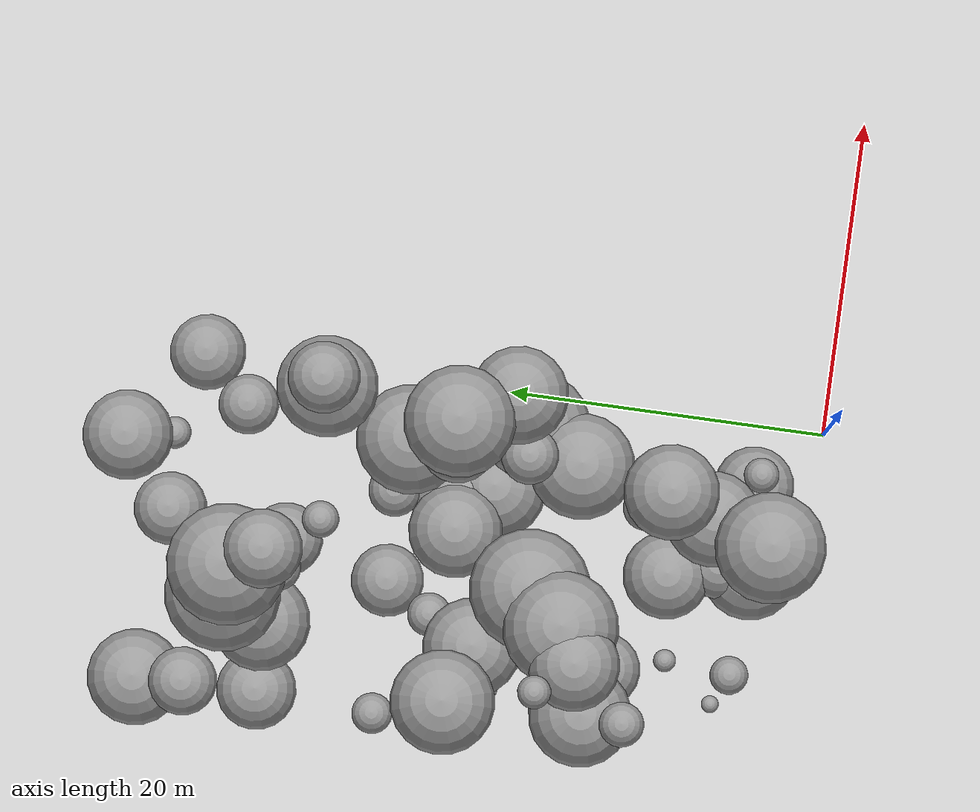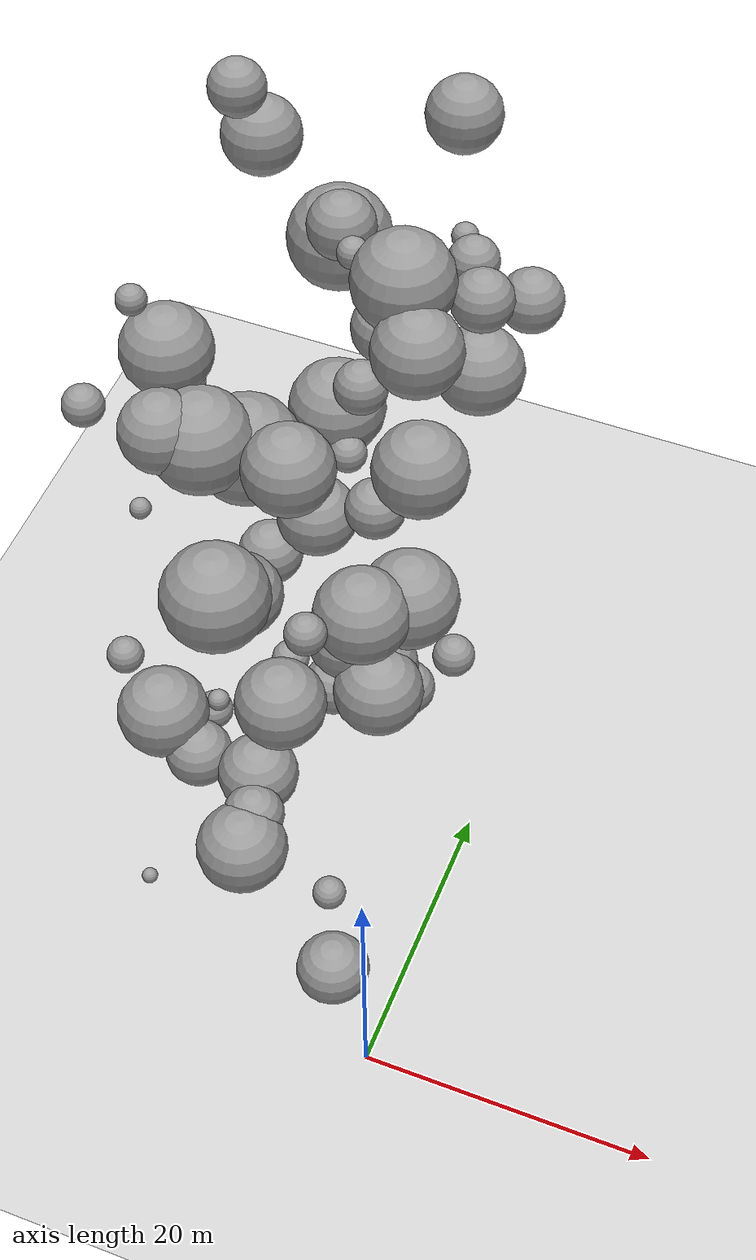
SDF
<sdf version="1.7">
 <world name="default">
  <model name="ground_plane">
   <static>1</static>
   <link name="link">
    <collision name="collision">
     <geometry><plane><normal>0 0 1</normal><size>100 100</size></plane></geometry>
     <surface>
      <contact><collide_bitmask>65535</collide_bitmask></contact>
      <friction><ode><mu>100</mu><mu2>50</mu2></ode></friction>
     </surface>
    </collision>
    <visual name="visual">
     <cast_shadows>0</cast_shadows>
     <geometry><plane><normal>0 0 1</normal><size>100 100</size></plane></geometry>
     <material>
      <script><uri>file://media/materials/scripts/gazebo.material</uri><name>Gazebo/Grey</name></script>
     </material>
    </visual>
   </link>
  </model>
  <model name="sphere_2">
   <static>1</static>
   <pose>-18 14 41 0 0 0</pose>
   <link name="link">
    <inertial>
     <mass>7141.995812192565</mass>
     <inertia>
      <ixx>18924.89900281907</ixx>
      <iyy>18924.89900281907</iyy>
      <izz>18924.89900281907</izz>
      <ixy>0</ixy>
      <ixz>0</ixz>
      <iyz>0</iyz>
     </inertia>
    </inertial>
    <collision name="collision">
     <geometry><sphere><radius>2.573813022834022</radius></sphere></geometry>
    </collision>
    <visual name="visual">
     <geometry><sphere><radius>2.573813022834022</radius></sphere></geometry>
     <material>
      <script><uri>file://media/materials/scripts/gazebo.material</uri><name>Gazebo/Grey</name></script>
     </material>
    </visual>
   </link>
  </model>
  <model name="sphere_25">
   <static>1</static>
   <pose>-15 34 40 0 0 0</pose>
   <link name="link">
    <inertial>
     <mass>17081.754802154046</mass>
     <inertia>
      <ixx>80950.9079854129</ixx>
      <iyy>80950.9079854129</iyy>
      <izz>80950.9079854129</izz>
      <ixy>0</ixy>
      <ixz>0</ixz>
      <iyz>0</iyz>
     </inertia>
    </inertial>
    <collision name="collision">
     <geometry><sphere><radius>3.4420297901579398</radius></sphere></geometry>
    </collision>
    <visual name="visual">
     <geometry><sphere><radius>3.4420297901579398</radius></sphere></geometry>
     <material>
      <script><uri>file://media/materials/scripts/gazebo.material</uri><name>Gazebo/Grey</name></script>
     </material>
    </visual>
   </link>
  </model>
  <model name="sphere_28">
   <static>1</static>
   <pose>-4 30 42 0 0 0</pose>
   <link name="link">
    <inertial>
     <mass>3500.1223190484397</mass>
     <inertia>
      <ixx>5765.092612627549</ixx>
      <iyy>5765.092612627549</iyy>
      <izz>5765.092612627549</izz>
      <ixy>0</ixy>
      <ixz>0</ixz>
      <iyz>0</iyz>
     </inertia>
    </inertial>
    <collision name="collision">
     <geometry><sphere><radius>2.0292312301328566</radius></sphere></geometry>
    </collision>
    <visual name="visual">
     <geometry><sphere><radius>2.0292312301328566</radius></sphere></geometry>
     <material>
      <script><uri>file://media/materials/scripts/gazebo.material</uri><name>Gazebo/Grey</name></script>
     </material>
    </visual>
   </link>
  </model>
  <model name="sphere_41">
   <static>1</static>
   <pose>-8 26 14 0 0 0</pose>
   <link name="link">
    <inertial>
     <mass>1766.1307490663748</mass>
     <inertia>
      <ixx>1843.765445693627</ixx>
      <iyy>1843.765445693627</iyy>
      <izz>1843.765445693627</izz>
      <ixy>0</ixy>
      <ixz>0</ixz>
      <iyz>0</iyz>
     </inertia>
    </inertial>
    <collision name="collision">
     <geometry><sphere><radius>1.6155165601072692</radius></sphere></geometry>
    </collision>
    <visual name="visual">
     <geometry><sphere><radius>1.6155165601072692</radius></sphere></geometry>
     <material>
      <script><uri>file://media/materials/scripts/gazebo.material</uri><name>Gazebo/Grey</name></script>
     </material>
    </visual>
   </link>
  </model>
  <model name="sphere_61">
   <static>1</static>
   <pose>-12 29 44 0 0 0</pose>
   <link name="link">
    <inertial>
     <mass>454.81781810059726</mass>
     <inertia>
      <ixx>192.18966767900343</ixx>
      <iyy>192.18966767900343</iyy>
      <izz>192.18966767900343</izz>
      <ixy>0</ixy>
      <ixz>0</ixz>
      <iyz>0</iyz>
     </inertia>
    </inertial>
    <collision name="collision">
     <geometry><sphere><radius>1.0278181606921297</radius></sphere></geometry>
    </collision>
    <visual name="visual">
     <geometry><sphere><radius>1.0278181606921297</radius></sphere></geometry>
     <material>
      <script><uri>file://media/materials/scripts/gazebo.material</uri><name>Gazebo/Grey</name></script>
     </material>
    </visual>
   </link>
  </model>
  <model name="sphere_63">
   <static>1</static>
   <pose>-4 18 27 0 0 0</pose>
   <link name="link">
    <inertial>
     <mass>14148.247010808896</mass>
     <inertia>
      <ixx>59134.188435213764</ixx>
      <iyy>59134.188435213764</iyy>
      <izz>59134.188435213764</izz>
      <ixy>0</ixy>
      <ixz>0</ixz>
      <iyz>0</iyz>
     </inertia>
    </inertial>
    <collision name="collision">
     <geometry><sphere><radius>3.2324960886278498</radius></sphere></geometry>
    </collision>
    <visual name="visual">
     <geometry><sphere><radius>3.2324960886278498</radius></sphere></geometry>
     <material>
      <script><uri>file://media/materials/scripts/gazebo.material</uri><name>Gazebo/Grey</name></script>
     </material>
    </visual>
   </link>
  </model>
  <model name="sphere_67">
   <static>1</static>
   <pose>-7 22 46 0 0 0</pose>
   <link name="link">
    <inertial>
     <mass>4066.4584105161607</mass>
     <inertia>
      <ixx>7402.211275898718</ixx>
      <iyy>7402.211275898718</iyy>
      <izz>7402.211275898718</izz>
      <ixy>0</ixy>
      <ixz>0</ixz>
      <iyz>0</iyz>
     </inertia>
    </inertial>
    <collision name="collision">
     <geometry><sphere><radius>2.133254032287309</radius></sphere></geometry>
    </collision>
    <visual name="visual">
     <geometry><sphere><radius>2.133254032287309</radius></sphere></geometry>
     <material>
      <script><uri>file://media/materials/scripts/gazebo.material</uri><name>Gazebo/Grey</name></script>
     </material>
    </visual>
   </link>
  </model>
  <model name="sphere_69">
   <static>1</static>
   <pose>-20 20 4 0 0 0</pose>
   <link name="link">
    <inertial>
     <mass>1127.4098411326543</mass>
     <inertia>
      <ixx>872.5773874558556</ixx>
      <iyy>872.5773874558556</iyy>
      <izz>872.5773874558556</izz>
      <ixy>0</ixy>
      <ixz>0</ixz>
      <iyz>0</iyz>
     </inertia>
    </inertial>
    <collision name="collision">
     <geometry><sphere><radius>1.3910126217815386</radius></sphere></geometry>
    </collision>
    <visual name="visual">
     <geometry><sphere><radius>1.3910126217815386</radius></sphere></geometry>
     <material>
      <script><uri>file://media/materials/scripts/gazebo.material</uri><name>Gazebo/Grey</name></script>
     </material>
    </visual>
   </link>
  </model>
  <model name="sphere_71">
   <static>1</static>
   <pose>-8 22 13 0 0 0</pose>
   <link name="link">
    <inertial>
     <mass>11244.100445207067</mass>
     <inertia>
      <ixx>40322.004405834894</ixx>
      <iyy>40322.004405834894</iyy>
      <izz>40322.004405834894</izz>
      <ixy>0</ixy>
      <ixz>0</ixz>
      <iyz>0</iyz>
     </inertia>
    </inertial>
    <collision name="collision">
     <geometry><sphere><radius>2.9941854969524218</radius></sphere></geometry>
    </collision>
    <visual name="visual">
     <geometry><sphere><radius>2.9941854969524218</radius></sphere></geometry>
     <material>
      <script><uri>file://media/materials/scripts/gazebo.material</uri><name>Gazebo/Grey</name></script>
     </material>
    </visual>
   </link>
  </model>
  <model name="sphere_73">
   <static>1</static>
   <pose>-12 32 17 0 0 0</pose>
   <link name="link">
    <inertial>
     <mass>4571.497256828923</mass>
     <inertia>
      <ixx>8997.013199426372</ixx>
      <iyy>8997.013199426372</iyy>
      <izz>8997.013199426372</izz>
      <ixy>0</ixy>
      <ixz>0</ixz>
      <iyz>0</iyz>
     </inertia>
    </inertial>
    <collision name="collision">
     <geometry><sphere><radius>2.2181450963034326</radius></sphere></geometry>
    </collision>
    <visual name="visual">
     <geometry><sphere><radius>2.2181450963034326</radius></sphere></geometry>
     <material>
      <script><uri>file://media/materials/scripts/gazebo.material</uri><name>Gazebo/Grey</name></script>
     </material>
    </visual>
   </link>
  </model>
  <model name="sphere_93">
   <static>1</static>
   <pose>-4 19 48 0 0 0</pose>
   <link name="link">
    <inertial>
     <mass>8311.373166665482</mass>
     <inertia>
      <ixx>24366.260794306832</ixx>
      <iyy>24366.260794306832</iyy>
      <izz>24366.260794306832</izz>
      <ixy>0</ixy>
      <ixz>0</ixz>
      <iyz>0</iyz>
     </inertia>
    </inertial>
    <collision name="collision">
     <geometry><sphere><radius>2.7072480995197026</radius></sphere></geometry>
    </collision>
    <visual name="visual">
     <geometry><sphere><radius>2.7072480995197026</radius></sphere></geometry>
     <material>
      <script><uri>file://media/materials/scripts/gazebo.material</uri><name>Gazebo/Grey</name></script>
     </material>
    </visual>
   </link>
  </model>
  <model name="sphere_94">
   <static>1</static>
   <pose>-22 35 49 0 0 0</pose>
   <link name="link">
    <inertial>
     <mass>2742.251840169783</mass>
     <inertia>
      <ixx>3838.661463078673</ixx>
      <iyy>3838.661463078673</iyy>
      <izz>3838.661463078673</izz>
      <ixy>0</ixy>
      <ixz>0</ixz>
      <iyz>0</iyz>
     </inertia>
    </inertial>
    <collision name="collision">
     <geometry><sphere><radius>1.8707090292219477</radius></sphere></geometry>
    </collision>
    <visual name="visual">
     <geometry><sphere><radius>1.8707090292219477</radius></sphere></geometry>
     <material>
      <script><uri>file://media/materials/scripts/gazebo.material</uri><name>Gazebo/Grey</name></script>
     </material>
    </visual>
   </link>
  </model>
  <model name="sphere_100">
   <static>1</static>
   <pose>-4 4 13 0 0 0</pose>
   <link name="link">
    <inertial>
     <mass>524.6039673287146</mass>
     <inertia>
      <ixx>243.81113497175832</ixx>
      <iyy>243.81113497175832</iyy>
      <izz>243.81113497175832</izz>
      <ixy>0</ixy>
      <ixz>0</ixz>
      <iyz>0</iyz>
     </inertia>
    </inertial>
    <collision name="collision">
     <geometry><sphere><radius>1.07790624259585</radius></sphere></geometry>
    </collision>
    <visual name="visual">
     <geometry><sphere><radius>1.07790624259585</radius></sphere></geometry>
     <material>
      <script><uri>file://media/materials/scripts/gazebo.material</uri><name>Gazebo/Grey</name></script>
     </material>
    </visual>
   </link>
  </model>
  <model name="sphere_102">
   <static>1</static>
   <pose>-6 15 28 0 0 0</pose>
   <link name="link">
    <inertial>
     <mass>12667.163915203399</mass>
     <inertia>
      <ixx>49181.288486240475</ixx>
      <iyy>49181.288486240475</iyy>
      <izz>49181.288486240475</izz>
      <ixy>0</ixy>
      <ixz>0</ixz>
      <iyz>0</iyz>
     </inertia>
    </inertial>
    <collision name="collision">
     <geometry><sphere><radius>3.115517968633299</radius></sphere></geometry>
    </collision>
    <visual name="visual">
     <geometry><sphere><radius>3.115517968633299</radius></sphere></geometry>
     <material>
      <script><uri>file://media/materials/scripts/gazebo.material</uri><name>Gazebo/Grey</name></script>
     </material>
    </visual>
   </link>
  </model>
  <model name="sphere_103">
   <static>1</static>
   <pose>-13 26 3 0 0 0</pose>
   <link name="link">
    <inertial>
     <mass>5026.13562513749</mass>
     <inertia>
      <ixx>10537.184656335994</ixx>
      <iyy>10537.184656335994</iyy>
      <izz>10537.184656335994</izz>
      <ixy>0</ixy>
      <ixz>0</ixz>
      <iyz>0</iyz>
     </inertia>
    </inertial>
    <collision name="collision">
     <geometry><sphere><radius>2.2893658383244873</radius></sphere></geometry>
    </collision>
    <visual name="visual">
     <geometry><sphere><radius>2.2893658383244873</radius></sphere></geometry>
     <material>
      <script><uri>file://media/materials/scripts/gazebo.material</uri><name>Gazebo/Grey</name></script>
     </material>
    </visual>
   </link>
  </model>
  <model name="sphere_106">
   <static>1</static>
   <pose>-15 23 9 0 0 0</pose>
   <link name="link">
    <inertial>
     <mass>1033.6897712101554</mass>
     <inertia>
      <ixx>755.0654812440316</ixx>
      <iyy>755.0654812440316</iyy>
      <izz>755.0654812440316</izz>
      <ixy>0</ixy>
      <ixz>0</ixz>
      <iyz>0</iyz>
     </inertia>
    </inertial>
    <collision name="collision">
     <geometry><sphere><radius>1.3513479998090223</radius></sphere></geometry>
    </collision>
    <visual name="visual">
     <geometry><sphere><radius>1.3513479998090223</radius></sphere></geometry>
     <material>
      <script><uri>file://media/materials/scripts/gazebo.material</uri><name>Gazebo/Grey</name></script>
     </material>
    </visual>
   </link>
  </model>
  <model name="sphere_110">
   <static>1</static>
   <pose>-9 40 47 0 0 0</pose>
   <link name="link">
    <inertial>
     <mass>6447.277937179993</mass>
     <inertia>
      <ixx>15957.379477456612</ixx>
      <iyy>15957.379477456612</iyy>
      <izz>15957.379477456612</izz>
      <ixy>0</ixy>
      <ixz>0</ixz>
      <iyz>0</iyz>
     </inertia>
    </inertial>
    <collision name="collision">
     <geometry><sphere><radius>2.487497165103655</radius></sphere></geometry>
    </collision>
    <visual name="visual">
     <geometry><sphere><radius>2.487497165103655</radius></sphere></geometry>
     <material>
      <script><uri>file://media/materials/scripts/gazebo.material</uri><name>Gazebo/Grey</name></script>
     </material>
    </visual>
   </link>
  </model>
  <model name="sphere_123">
   <static>1</static>
   <pose>-20 16 49 0 0 0</pose>
   <link name="link">
    <inertial>
     <mass>327.09981482293153</mass>
     <inertia>
      <ixx>110.95190132191489</ixx>
      <iyy>110.95190132191489</iyy>
      <izz>110.95190132191489</izz>
      <ixy>0</ixy>
      <ixz>0</ixz>
      <iyz>0</iyz>
     </inertia>
    </inertial>
    <collision name="collision">
     <geometry><sphere><radius>0.9208676778679811</radius></sphere></geometry>
    </collision>
    <visual name="visual">
     <geometry><sphere><radius>0.9208676778679811</radius></sphere></geometry>
     <material>
      <script><uri>file://media/materials/scripts/gazebo.material</uri><name>Gazebo/Grey</name></script>
     </material>
    </visual>
   </link>
  </model>
  <model name="sphere_127">
   <static>1</static>
   <pose>-3 24 14 0 0 0</pose>
   <link name="link">
    <inertial>
     <mass>1352.0639882671467</mass>
     <inertia>
      <ixx>1181.2169253802297</ixx>
      <iyy>1181.2169253802297</iyy>
      <izz>1181.2169253802297</izz>
      <ixy>0</ixy>
      <ixz>0</ixz>
      <iyz>0</iyz>
     </inertia>
    </inertial>
    <collision name="collision">
     <geometry><sphere><radius>1.4778699280354073</radius></sphere></geometry>
    </collision>
    <visual name="visual">
     <geometry><sphere><radius>1.4778699280354073</radius></sphere></geometry>
     <material>
      <script><uri>file://media/materials/scripts/gazebo.material</uri><name>Gazebo/Grey</name></script>
     </material>
    </visual>
   </link>
  </model>
  <model name="sphere_136">
   <static>1</static>
   <pose>-11 9 16 0 0 0</pose>
   <link name="link">
    <inertial>
     <mass>7768.646140801729</mass>
     <inertia>
      <ixx>21772.57615839391</ixx>
      <iyy>21772.57615839391</iyy>
      <izz>21772.57615839391</izz>
      <ixy>0</ixy>
      <ixz>0</ixz>
      <iyz>0</iyz>
     </inertia>
    </inertial>
    <collision name="collision">
     <geometry><sphere><radius>2.646989652281881</radius></sphere></geometry>
    </collision>
    <visual name="visual">
     <geometry><sphere><radius>2.646989652281881</radius></sphere></geometry>
     <material>
      <script><uri>file://media/materials/scripts/gazebo.material</uri><name>Gazebo/Grey</name></script>
     </material>
    </visual>
   </link>
  </model>
  <model name="sphere_140">
   <static>1</static>
   <pose>-3 37 36 0 0 0</pose>
   <link name="link">
    <inertial>
     <mass>4288.654907339209</mass>
     <inertia>
      <ixx>8088.526654925293</ixx>
      <iyy>8088.526654925293</iyy>
      <izz>8088.526654925293</izz>
      <ixy>0</ixy>
      <ixz>0</ixz>
      <iyz>0</iyz>
     </inertia>
    </inertial>
    <collision name="collision">
     <geometry><sphere><radius>2.1714216523017944</radius></sphere></geometry>
    </collision>
    <visual name="visual">
     <geometry><sphere><radius>2.1714216523017944</radius></sphere></geometry>
     <material>
      <script><uri>file://media/materials/scripts/gazebo.material</uri><name>Gazebo/Grey</name></script>
     </material>
    </visual>
   </link>
  </model>
  <model name="sphere_156">
   <static>1</static>
   <pose>-4 4 3 0 0 0</pose>
   <link name="link">
    <inertial>
     <mass>6595.5084233707</mass>
     <inertia>
      <ixx>16573.518497533958</ixx>
      <iyy>16573.518497533958</iyy>
      <izz>16573.518497533958</izz>
      <ixy>0</ixy>
      <ixz>0</ixz>
      <iyz>0</iyz>
     </inertia>
    </inertial>
    <collision name="collision">
     <geometry><sphere><radius>2.5064163987357566</radius></sphere></geometry>
    </collision>
    <visual name="visual">
     <geometry><sphere><radius>2.5064163987357566</radius></sphere></geometry>
     <material>
      <script><uri>file://media/materials/scripts/gazebo.material</uri><name>Gazebo/Grey</name></script>
     </material>
    </visual>
   </link>
  </model>
  <model name="sphere_158">
   <static>1</static>
   <pose>-14 32 22 0 0 0</pose>
   <link name="link">
    <inertial>
     <mass>1050.6451288178964</mass>
     <inertia>
      <ixx>775.8200586126322</ixx>
      <iyy>775.8200586126322</iyy>
      <izz>775.8200586126322</izz>
      <ixy>0</ixy>
      <ixz>0</ixz>
      <iyz>0</iyz>
     </inertia>
    </inertial>
    <collision name="collision">
     <geometry><sphere><radius>1.3586965751040037</radius></sphere></geometry>
    </collision>
    <visual name="visual">
     <geometry><sphere><radius>1.3586965751040037</radius></sphere></geometry>
     <material>
      <script><uri>file://media/materials/scripts/gazebo.material</uri><name>Gazebo/Grey</name></script>
     </material>
    </visual>
   </link>
  </model>
  <model name="sphere_166">
   <static>1</static>
   <pose>-8 11 30 0 0 0</pose>
   <link name="link">
    <inertial>
     <mass>1018.0867717723123</mass>
     <inertia>
      <ixx>736.1656958033868</ixx>
      <iyy>736.1656958033868</iyy>
      <izz>736.1656958033868</izz>
      <ixy>0</ixy>
      <ixz>0</ixz>
      <iyz>0</iyz>
     </inertia>
    </inertial>
    <collision name="collision">
     <geometry><sphere><radius>1.3445142053923478</radius></sphere></geometry>
    </collision>
    <visual name="visual">
     <geometry><sphere><radius>1.3445142053923478</radius></sphere></geometry>
     <material>
      <script><uri>file://media/materials/scripts/gazebo.material</uri><name>Gazebo/Grey</name></script>
     </material>
    </visual>
   </link>
  </model>
  <model name="sphere_173">
   <static>1</static>
   <pose>-17 20 19 0 0 0</pose>
   <link name="link">
    <inertial>
     <mass>11007.929650396385</mass>
     <inertia>
      <ixx>38920.37303454034</ixx>
      <iyy>38920.37303454034</iyy>
      <izz>38920.37303454034</izz>
      <ixy>0</ixy>
      <ixz>0</ixz>
      <iyz>0</iyz>
     </inertia>
    </inertial>
    <collision name="collision">
     <geometry><sphere><radius>2.973073724421562</radius></sphere></geometry>
    </collision>
    <visual name="visual">
     <geometry><sphere><radius>2.973073724421562</radius></sphere></geometry>
     <material>
      <script><uri>file://media/materials/scripts/gazebo.material</uri><name>Gazebo/Grey</name></script>
     </material>
    </visual>
   </link>
  </model>
  <model name="sphere_175">
   <static>1</static>
   <pose>-21 11 45 0 0 0</pose>
   <link name="link">
    <inertial>
     <mass>823.2214231105694</mass>
     <inertia>
      <ixx>516.6487203728456</ixx>
      <iyy>516.6487203728456</iyy>
      <izz>516.6487203728456</izz>
      <ixy>0</ixy>
      <ixz>0</ixz>
      <iyz>0</iyz>
     </inertia>
    </inertial>
    <collision name="collision">
     <geometry><sphere><radius>1.2525911862159984</radius></sphere></geometry>
    </collision>
    <visual name="visual">
     <geometry><sphere><radius>1.2525911862159984</radius></sphere></geometry>
     <material>
      <script><uri>file://media/materials/scripts/gazebo.material</uri><name>Gazebo/Grey</name></script>
     </material>
    </visual>
   </link>
  </model>
  <model name="sphere_176">
   <static>1</static>
   <pose>-20 13 13 0 0 0</pose>
   <link name="link">
    <inertial>
     <mass>13181.424952983547</mass>
     <inertia>
      <ixx>52553.88835190666</ixx>
      <iyy>52553.88835190666</iyy>
      <izz>52553.88835190666</izz>
      <ixy>0</ixy>
      <ixz>0</ixz>
      <iyz>0</iyz>
     </inertia>
    </inertial>
    <collision name="collision">
     <geometry><sphere><radius>3.1571211721837225</radius></sphere></geometry>
    </collision>
    <visual name="visual">
     <geometry><sphere><radius>3.1571211721837225</radius></sphere></geometry>
     <material>
      <script><uri>file://media/materials/scripts/gazebo.material</uri><name>Gazebo/Grey</name></script>
     </material>
    </visual>
   </link>
  </model>
  <model name="sphere_179">
   <static>1</static>
   <pose>-6 23 10 0 0 0</pose>
   <link name="link">
    <inertial>
     <mass>3048.972197666742</mass>
     <inertia>
      <ixx>4580.610442717745</ixx>
      <iyy>4580.610442717745</iyy>
      <izz>4580.610442717745</izz>
      <ixy>0</ixy>
      <ixz>0</ixz>
      <iyz>0</iyz>
     </inertia>
    </inertial>
    <collision name="collision">
     <geometry><sphere><radius>1.9380052608650598</radius></sphere></geometry>
    </collision>
    <visual name="visual">
     <geometry><sphere><radius>1.9380052608650598</radius></sphere></geometry>
     <material>
      <script><uri>file://media/materials/scripts/gazebo.material</uri><name>Gazebo/Grey</name></script>
     </material>
    </visual>
   </link>
  </model>
  <model name="sphere_191">
   <static>1</static>
   <pose>-16 15 40 0 0 0</pose>
   <link name="link">
    <inertial>
     <mass>14748.37786186525</mass>
     <inertia>
      <ixx>63373.54649806886</ixx>
      <iyy>63373.54649806886</iyy>
      <izz>63373.54649806886</izz>
      <ixy>0</ixy>
      <ixz>0</ixz>
      <iyz>0</iyz>
     </inertia>
    </inertial>
    <collision name="collision">
     <geometry><sphere><radius>3.277569293634258</radius></sphere></geometry>
    </collision>
    <visual name="visual">
     <geometry><sphere><radius>3.277569293634258</radius></sphere></geometry>
     <material>
      <script><uri>file://media/materials/scripts/gazebo.material</uri><name>Gazebo/Grey</name></script>
     </material>
    </visual>
   </link>
  </model>
  <model name="sphere_200">
   <static>1</static>
   <pose>-17 9 40 0 0 0</pose>
   <link name="link">
    <inertial>
     <mass>105.81546577298448</mass>
     <inertia>
      <ixx>16.91412354069049</ixx>
      <iyy>16.91412354069049</iyy>
      <izz>16.91412354069049</izz>
      <ixy>0</ixy>
      <ixz>0</ixz>
      <iyz>0</iyz>
     </inertia>
    </inertial>
    <collision name="collision">
     <geometry><sphere><radius>0.6321500542496902</radius></sphere></geometry>
    </collision>
    <visual name="visual">
     <geometry><sphere><radius>0.6321500542496902</radius></sphere></geometry>
     <material>
      <script><uri>file://media/materials/scripts/gazebo.material</uri><name>Gazebo/Grey</name></script>
     </material>
    </visual>
   </link>
  </model>
  <model name="sphere_209">
   <static>1</static>
   <pose>-10 4 15 0 0 0</pose>
   <link name="link">
    <inertial>
     <mass>11035.340143624375</mass>
     <inertia>
      <ixx>39082.03102426339</ixx>
      <iyy>39082.03102426339</iyy>
      <izz>39082.03102426339</izz>
      <ixy>0</ixy>
      <ixz>0</ixz>
      <iyz>0</iyz>
     </inertia>
    </inertial>
    <collision name="collision">
     <geometry><sphere><radius>2.9755393975563105</radius></sphere></geometry>
    </collision>
    <visual name="visual">
     <geometry><sphere><radius>2.9755393975563105</radius></sphere></geometry>
     <material>
      <script><uri>file://media/materials/scripts/gazebo.material</uri><name>Gazebo/Grey</name></script>
     </material>
    </visual>
   </link>
  </model>
  <model name="sphere_217">
   <static>1</static>
   <pose>-10 22 15 0 0 0</pose>
   <link name="link">
    <inertial>
     <mass>9857.411416131104</mass>
     <inertia>
      <ixx>32379.667895613253</ixx>
      <iyy>32379.667895613253</iyy>
      <izz>32379.667895613253</izz>
      <ixy>0</ixy>
      <ixz>0</ixz>
      <iyz>0</iyz>
     </inertia>
    </inertial>
    <collision name="collision">
     <geometry><sphere><radius>2.8656606348323366</radius></sphere></geometry>
    </collision>
    <visual name="visual">
     <geometry><sphere><radius>2.8656606348323366</radius></sphere></geometry>
     <material>
      <script><uri>file://media/materials/scripts/gazebo.material</uri><name>Gazebo/Grey</name></script>
     </material>
    </visual>
   </link>
  </model>
  <model name="sphere_221">
   <static>1</static>
   <pose>-22 25 33 0 0 0</pose>
   <link name="link">
    <inertial>
     <mass>675.6398695752815</mass>
     <inertia>
      <ixx>371.70040487520384</ixx>
      <iyy>371.70040487520384</iyy>
      <izz>371.70040487520384</izz>
      <ixy>0</ixy>
      <ixz>0</ixz>
      <iyz>0</iyz>
     </inertia>
    </inertial>
    <collision name="collision">
     <geometry><sphere><radius>1.1727593029954195</radius></sphere></geometry>
    </collision>
    <visual name="visual">
     <geometry><sphere><radius>1.1727593029954195</radius></sphere></geometry>
     <material>
      <script><uri>file://media/materials/scripts/gazebo.material</uri><name>Gazebo/Grey</name></script>
     </material>
    </visual>
   </link>
  </model>
  <model name="sphere_230">
   <static>1</static>
   <pose>-10 4 41 0 0 0</pose>
   <link name="link">
    <inertial>
     <mass>12913.141456881911</mass>
     <inertia>
      <ixx>50783.28213607665</ixx>
      <iyy>50783.28213607665</iyy>
      <izz>50783.28213607665</izz>
      <ixy>0</ixy>
      <ixz>0</ixz>
      <iyz>0</iyz>
     </inertia>
    </inertial>
    <collision name="collision">
     <geometry><sphere><radius>3.135555072515173</radius></sphere></geometry>
    </collision>
    <visual name="visual">
     <geometry><sphere><radius>3.135555072515173</radius></sphere></geometry>
     <material>
      <script><uri>file://media/materials/scripts/gazebo.material</uri><name>Gazebo/Grey</name></script>
     </material>
    </visual>
   </link>
  </model>
  <model name="sphere_246">
   <static>1</static>
   <pose>-17 33 13 0 0 0</pose>
   <link name="link">
    <inertial>
     <mass>11414.29002730691</mass>
     <inertia>
      <ixx>41344.31086912313</ixx>
      <iyy>41344.31086912313</iyy>
      <izz>41344.31086912313</izz>
      <ixy>0</ixy>
      <ixz>0</ixz>
      <iyz>0</iyz>
     </inertia>
    </inertial>
    <collision name="collision">
     <geometry><sphere><radius>3.0092164785844107</radius></sphere></geometry>
    </collision>
    <visual name="visual">
     <geometry><sphere><radius>3.0092164785844107</radius></sphere></geometry>
     <material>
      <script><uri>file://media/materials/scripts/gazebo.material</uri><name>Gazebo/Grey</name></script>
     </material>
    </visual>
   </link>
  </model>
  <model name="sphere_266">
   <static>1</static>
   <pose>-17 12 11 0 0 0</pose>
   <link name="link">
    <inertial>
     <mass>5219.296770418497</mass>
     <inertia>
      <ixx>11220.724633523241</ixx>
      <iyy>11220.724633523241</iyy>
      <izz>11220.724633523241</izz>
      <ixy>0</ixy>
      <ixz>0</ixz>
      <iyz>0</iyz>
     </inertia>
    </inertial>
    <collision name="collision">
     <geometry><sphere><radius>2.3183257594121898</radius></sphere></geometry>
    </collision>
    <visual name="visual">
     <geometry><sphere><radius>2.3183257594121898</radius></sphere></geometry>
     <material>
      <script><uri>file://media/materials/scripts/gazebo.material</uri><name>Gazebo/Grey</name></script>
     </material>
    </visual>
   </link>
  </model>
  <model name="sphere_271">
   <static>1</static>
   <pose>-8 38 39 0 0 0</pose>
   <link name="link">
    <inertial>
     <mass>316.26403175631543</mass>
     <inertia>
      <ixx>104.89398628437553</ixx>
      <iyy>104.89398628437553</iyy>
      <izz>104.89398628437553</izz>
      <ixy>0</ixy>
      <ixz>0</ixz>
      <iyz>0</iyz>
     </inertia>
    </inertial>
    <collision name="collision">
     <geometry><sphere><radius>0.9105848028813379</radius></sphere></geometry>
    </collision>
    <visual name="visual">
     <geometry><sphere><radius>0.9105848028813379</radius></sphere></geometry>
     <material>
      <script><uri>file://media/materials/scripts/gazebo.material</uri><name>Gazebo/Grey</name></script>
     </material>
    </visual>
   </link>
  </model>
  <model name="sphere_276">
   <static>1</static>
   <pose>-14 17 38 0 0 0</pose>
   <link name="link">
    <inertial>
     <mass>17263.98986650104</mass>
     <inertia>
      <ixx>82395.3821788074</ixx>
      <iyy>82395.3821788074</iyy>
      <izz>82395.3821788074</izz>
      <ixy>0</ixy>
      <ixz>0</ixz>
      <iyz>0</iyz>
     </inertia>
    </inertial>
    <collision name="collision">
     <geometry><sphere><radius>3.4542268397593916</radius></sphere></geometry>
    </collision>
    <visual name="visual">
     <geometry><sphere><radius>3.4542268397593916</radius></sphere></geometry>
     <material>
      <script><uri>file://media/materials/scripts/gazebo.material</uri><name>Gazebo/Grey</name></script>
     </material>
    </visual>
   </link>
  </model>
  <model name="sphere_285">
   <static>1</static>
   <pose>-6 25 31 0 0 0</pose>
   <link name="link">
    <inertial>
     <mass>13589.767397828204</mass>
     <inertia>
      <ixx>55295.224310788384</ixx>
      <iyy>55295.224310788384</iyy>
      <izz>55295.224310788384</izz>
      <ixy>0</ixy>
      <ixz>0</ixz>
      <iyz>0</iyz>
     </inertia>
    </inertial>
    <collision name="collision">
     <geometry><sphere><radius>3.1893912961693704</radius></sphere></geometry>
    </collision>
    <visual name="visual">
     <geometry><sphere><radius>3.1893912961693704</radius></sphere></geometry>
     <material>
      <script><uri>file://media/materials/scripts/gazebo.material</uri><name>Gazebo/Grey</name></script>
     </material>
    </visual>
   </link>
  </model>
  <model name="sphere_323">
   <static>1</static>
   <pose>-14 32 43 0 0 0</pose>
   <link name="link">
    <inertial>
     <mass>4602.186487520258</mass>
     <inertia>
      <ixx>9097.902397219168</ixx>
      <iyy>9097.902397219168</iyy>
      <izz>9097.902397219168</izz>
      <ixy>0</ixy>
      <ixz>0</ixz>
      <iyz>0</iyz>
     </inertia>
    </inertial>
    <collision name="collision">
     <geometry><sphere><radius>2.223097624214379</radius></sphere></geometry>
    </collision>
    <visual name="visual">
     <geometry><sphere><radius>2.223097624214379</radius></sphere></geometry>
     <material>
      <script><uri>file://media/materials/scripts/gazebo.material</uri><name>Gazebo/Grey</name></script>
     </material>
    </visual>
   </link>
  </model>
  <model name="sphere_362">
   <static>1</static>
   <pose>-6 34 41 0 0 0</pose>
   <link name="link">
    <inertial>
     <mass>2022.3470526392703</mass>
     <inertia>
      <ixx>2310.7895550771777</ixx>
      <iyy>2310.7895550771777</iyy>
      <izz>2310.7895550771777</izz>
      <ixy>0</ixy>
      <ixz>0</ixz>
      <iyz>0</iyz>
     </inertia>
    </inertial>
    <collision name="collision">
     <geometry><sphere><radius>1.6901387502205312</radius></sphere></geometry>
    </collision>
    <visual name="visual">
     <geometry><sphere><radius>1.6901387502205312</radius></sphere></geometry>
     <material>
      <script><uri>file://media/materials/scripts/gazebo.material</uri><name>Gazebo/Grey</name></script>
     </material>
    </visual>
   </link>
  </model>
  <model name="sphere_385">
   <static>1</static>
   <pose>-4 30 36 0 0 0</pose>
   <link name="link">
    <inertial>
     <mass>10448.731565833144</mass>
     <inertia>
      <ixx>35681.26189957552</ixx>
      <iyy>35681.26189957552</iyy>
      <izz>35681.26189957552</izz>
      <ixy>0</ixy>
      <ixz>0</ixz>
      <iyz>0</iyz>
     </inertia>
    </inertial>
    <collision name="collision">
     <geometry><sphere><radius>2.921852719805984</radius></sphere></geometry>
    </collision>
    <visual name="visual">
     <geometry><sphere><radius>2.921852719805984</radius></sphere></geometry>
     <material>
      <script><uri>file://media/materials/scripts/gazebo.material</uri><name>Gazebo/Grey</name></script>
     </material>
    </visual>
   </link>
  </model>
  <model name="sphere_397">
   <static>1</static>
   <pose>-16 35 23 0 0 0</pose>
   <link name="link">
    <inertial>
     <mass>17247.14466337528</mass>
     <inertia>
      <ixx>82261.4313483442</ixx>
      <iyy>82261.4313483442</iyy>
      <izz>82261.4313483442</izz>
      <ixy>0</ixy>
      <ixz>0</ixz>
      <iyz>0</iyz>
     </inertia>
    </inertial>
    <collision name="collision">
     <geometry><sphere><radius>3.453102995875992</radius></sphere></geometry>
    </collision>
    <visual name="visual">
     <geometry><sphere><radius>3.453102995875992</radius></sphere></geometry>
     <material>
      <script><uri>file://media/materials/scripts/gazebo.material</uri><name>Gazebo/Grey</name></script>
     </material>
    </visual>
   </link>
  </model>
  <model name="sphere_416">
   <static>1</static>
   <pose>-8 10 46 0 0 0</pose>
   <link name="link">
    <inertial>
     <mass>7854.68156733561</mass>
     <inertia>
      <ixx>22175.93247360331</ixx>
      <iyy>22175.93247360331</iyy>
      <izz>22175.93247360331</izz>
      <ixy>0</ixy>
      <ixz>0</ixz>
      <iyz>0</iyz>
     </inertia>
    </inertial>
    <collision name="collision">
     <geometry><sphere><radius>2.6567253392018917</radius></sphere></geometry>
    </collision>
    <visual name="visual">
     <geometry><sphere><radius>2.6567253392018917</radius></sphere></geometry>
     <material>
      <script><uri>file://media/materials/scripts/gazebo.material</uri><name>Gazebo/Grey</name></script>
     </material>
    </visual>
   </link>
  </model>
  <model name="sphere_422">
   <static>1</static>
   <pose>-7 18 45 0 0 0</pose>
   <link name="link">
    <inertial>
     <mass>1713.1325248554951</mass>
     <inertia>
      <ixx>1752.477776498741</ixx>
      <iyy>1752.477776498741</iyy>
      <izz>1752.477776498741</izz>
      <ixy>0</ixy>
      <ixz>0</ixz>
      <iyz>0</iyz>
     </inertia>
    </inertial>
    <collision name="collision">
     <geometry><sphere><radius>1.5991926450930576</radius></sphere></geometry>
    </collision>
    <visual name="visual">
     <geometry><sphere><radius>1.5991926450930576</radius></sphere></geometry>
     <material>
      <script><uri>file://media/materials/scripts/gazebo.material</uri><name>Gazebo/Grey</name></script>
     </material>
    </visual>
   </link>
  </model>
  <model name="sphere_433">
   <static>1</static>
   <pose>-6 22 50 0 0 0</pose>
   <link name="link">
    <inertial>
     <mass>12132.392502158827</mass>
     <inertia>
      <ixx>45769.728728923685</ixx>
      <iyy>45769.728728923685</iyy>
      <izz>45769.728728923685</izz>
      <ixy>0</ixy>
      <ixz>0</ixz>
      <iyz>0</iyz>
     </inertia>
    </inertial>
    <collision name="collision">
     <geometry><sphere><radius>3.0710433548967755</radius></sphere></geometry>
    </collision>
    <visual name="visual">
     <geometry><sphere><radius>3.0710433548967755</radius></sphere></geometry>
     <material>
      <script><uri>file://media/materials/scripts/gazebo.material</uri><name>Gazebo/Grey</name></script>
     </material>
    </visual>
   </link>
  </model>
  <model name="sphere_437">
   <static>1</static>
   <pose>-22 38 43 0 0 0</pose>
   <link name="link">
    <inertial>
     <mass>8066.862749866906</mass>
     <inertia>
      <ixx>23183.305859773845</ixx>
      <iyy>23183.305859773845</iyy>
      <izz>23183.305859773845</izz>
      <ixy>0</ixy>
      <ixz>0</ixz>
      <iyz>0</iyz>
     </inertia>
    </inertial>
    <collision name="collision">
     <geometry><sphere><radius>2.680435448860413</radius></sphere></geometry>
    </collision>
    <visual name="visual">
     <geometry><sphere><radius>2.680435448860413</radius></sphere></geometry>
     <material>
      <script><uri>file://media/materials/scripts/gazebo.material</uri><name>Gazebo/Grey</name></script>
     </material>
    </visual>
   </link>
  </model>
  <model name="sphere_440">
   <static>1</static>
   <pose>-21 33 7 0 0 0</pose>
   <link name="link">
    <inertial>
     <mass>6386.817910699334</mass>
     <inertia>
      <ixx>15708.756555642438</ixx>
      <iyy>15708.756555642438</iyy>
      <izz>15708.756555642438</izz>
      <ixy>0</ixy>
      <ixz>0</ixz>
      <iyz>0</iyz>
     </inertia>
    </inertial>
    <collision name="collision">
     <geometry><sphere><radius>2.479697143511016</radius></sphere></geometry>
    </collision>
    <visual name="visual">
     <geometry><sphere><radius>2.479697143511016</radius></sphere></geometry>
     <material>
      <script><uri>file://media/materials/scripts/gazebo.material</uri><name>Gazebo/Grey</name></script>
     </material>
    </visual>
   </link>
  </model>
  <model name="sphere_441">
   <static>1</static>
   <pose>-18 5 5 0 0 0</pose>
   <link name="link">
    <inertial>
     <mass>67.35213579277345</mass>
     <inertia>
      <ixx>7.966236680052511</ixx>
      <iyy>7.966236680052511</iyy>
      <izz>7.966236680052511</izz>
      <ixy>0</ixy>
      <ixz>0</ixz>
      <iyz>0</iyz>
     </inertia>
    </inertial>
    <collision name="collision">
     <geometry><sphere><radius>0.5437771083617705</radius></sphere></geometry>
    </collision>
    <visual name="visual">
     <geometry><sphere><radius>0.5437771083617705</radius></sphere></geometry>
     <material>
      <script><uri>file://media/materials/scripts/gazebo.material</uri><name>Gazebo/Grey</name></script>
     </material>
    </visual>
   </link>
  </model>
  <model name="sphere_446">
   <static>1</static>
   <pose>-21 21 40 0 0 0</pose>
   <link name="link">
    <inertial>
     <mass>10819.724753233162</mass>
     <inertia>
      <ixx>37817.65593900871</ixx>
      <iyy>37817.65593900871</iyy>
      <izz>37817.65593900871</izz>
      <ixy>0</ixy>
      <ixz>0</ixz>
      <iyz>0</iyz>
     </inertia>
    </inertial>
    <collision name="collision">
     <geometry><sphere><radius>2.9560324765943413</radius></sphere></geometry>
    </collision>
    <visual name="visual">
     <geometry><sphere><radius>2.9560324765943413</radius></sphere></geometry>
     <material>
      <script><uri>file://media/materials/scripts/gazebo.material</uri><name>Gazebo/Grey</name></script>
     </material>
    </visual>
   </link>
  </model>
  <model name="sphere_456">
   <static>1</static>
   <pose>-7 20 13 0 0 0</pose>
   <link name="link">
    <inertial>
     <mass>12939.05659172549</mass>
     <inertia>
      <ixx>50953.255724797586</ixx>
      <iyy>50953.255724797586</iyy>
      <izz>50953.255724797586</izz>
      <ixy>0</ixy>
      <ixz>0</ixz>
      <iyz>0</iyz>
     </inertia>
    </inertial>
    <collision name="collision">
     <geometry><sphere><radius>3.1376512325837362</radius></sphere></geometry>
    </collision>
    <visual name="visual">
     <geometry><sphere><radius>3.1376512325837362</radius></sphere></geometry>
     <material>
      <script><uri>file://media/materials/scripts/gazebo.material</uri><name>Gazebo/Grey</name></script>
     </material>
    </visual>
   </link>
  </model>
  <model name="sphere_464">
   <static>1</static>
   <pose>-19 19 7 0 0 0</pose>
   <link name="link">
    <inertial>
     <mass>205.1999527486292</mass>
     <inertia>
      <ixx>51.00698803562361</ixx>
      <iyy>51.00698803562361</iyy>
      <izz>51.00698803562361</izz>
      <ixy>0</ixy>
      <ixz>0</ixz>
      <iyz>0</iyz>
     </inertia>
    </inertial>
    <collision name="collision">
     <geometry><sphere><radius>0.7883085114488333</radius></sphere></geometry>
    </collision>
    <visual name="visual">
     <geometry><sphere><radius>0.7883085114488333</radius></sphere></geometry>
     <material>
      <script><uri>file://media/materials/scripts/gazebo.material</uri><name>Gazebo/Grey</name></script>
     </material>
    </visual>
   </link>
  </model>
  <model name="sphere_465">
   <static>1</static>
   <pose>-8 7 28 0 0 0</pose>
   <link name="link">
    <inertial>
     <mass>9326.786854458907</mass>
     <inertia>
      <ixx>29527.114285013366</ixx>
      <iyy>29527.114285013366</iyy>
      <izz>29527.114285013366</izz>
      <ixy>0</ixy>
      <ixz>0</ixz>
      <iyz>0</iyz>
     </inertia>
    </inertial>
    <collision name="collision">
     <geometry><sphere><radius>2.81328986000558</radius></sphere></geometry>
    </collision>
    <visual name="visual">
     <geometry><sphere><radius>2.81328986000558</radius></sphere></geometry>
     <material>
      <script><uri>file://media/materials/scripts/gazebo.material</uri><name>Gazebo/Grey</name></script>
     </material>
    </visual>
   </link>
  </model>
  <model name="sphere_466">
   <static>1</static>
   <pose>-10 6 16 0 0 0</pose>
   <link name="link">
    <inertial>
     <mass>3336.994495315144</mass>
     <inertia>
      <ixx>5324.269974550043</ixx>
      <iyy>5324.269974550043</iyy>
      <izz>5324.269974550043</izz>
      <ixy>0</ixy>
      <ixz>0</ixz>
      <iyz>0</iyz>
     </inertia>
    </inertial>
    <collision name="collision">
     <geometry><sphere><radius>1.9972033858805842</radius></sphere></geometry>
    </collision>
    <visual name="visual">
     <geometry><sphere><radius>1.9972033858805842</radius></sphere></geometry>
     <material>
      <script><uri>file://media/materials/scripts/gazebo.material</uri><name>Gazebo/Grey</name></script>
     </material>
    </visual>
   </link>
  </model>
  <model name="sphere_480">
   <static>1</static>
   <pose>-17 5 31 0 0 0</pose>
   <link name="link">
    <inertial>
     <mass>574.925388592987</mass>
     <inertia>
      <ixx>284.02292619686824</ixx>
      <iyy>284.02292619686824</iyy>
      <izz>284.02292619686824</izz>
      <ixy>0</ixy>
      <ixz>0</ixz>
      <iyz>0</iyz>
     </inertia>
    </inertial>
    <collision name="collision">
     <geometry><sphere><radius>1.1113246805769763</radius></sphere></geometry>
    </collision>
    <visual name="visual">
     <geometry><sphere><radius>1.1113246805769763</radius></sphere></geometry>
     <material>
      <script><uri>file://media/materials/scripts/gazebo.material</uri><name>Gazebo/Grey</name></script>
     </material>
    </visual>
   </link>
  </model>
  <model name="sphere_493">
   <static>1</static>
   <pose>-12 38 34 0 0 0</pose>
   <link name="link">
    <inertial>
     <mass>3840.277783085915</mass>
     <inertia>
      <ixx>6728.815981833649</ixx>
      <iyy>6728.815981833649</iyy>
      <izz>6728.815981833649</izz>
      <ixy>0</ixy>
      <ixz>0</ixz>
      <iyz>0</iyz>
     </inertia>
    </inertial>
    <collision name="collision">
     <geometry><sphere><radius>2.092945936854667</radius></sphere></geometry>
    </collision>
    <visual name="visual">
     <geometry><sphere><radius>2.092945936854667</radius></sphere></geometry>
     <material>
      <script><uri>file://media/materials/scripts/gazebo.material</uri><name>Gazebo/Grey</name></script>
     </material>
    </visual>
   </link>
  </model>
 </world>
</sdf>
